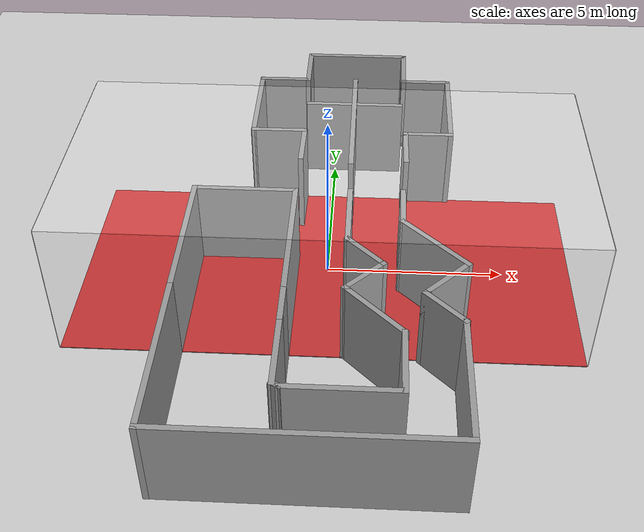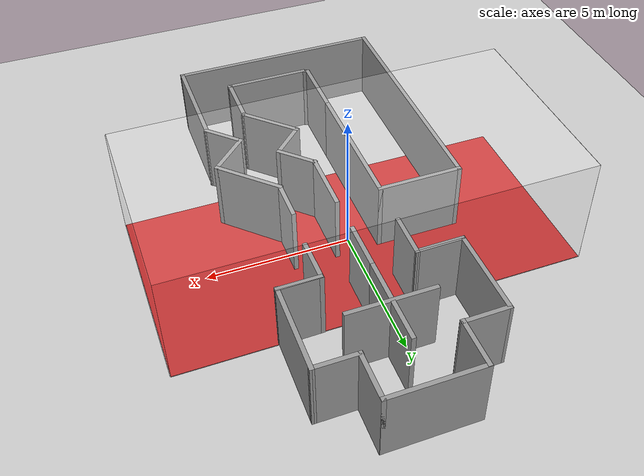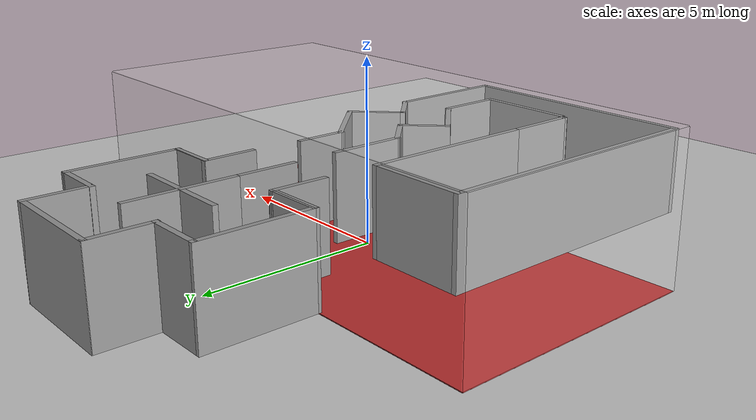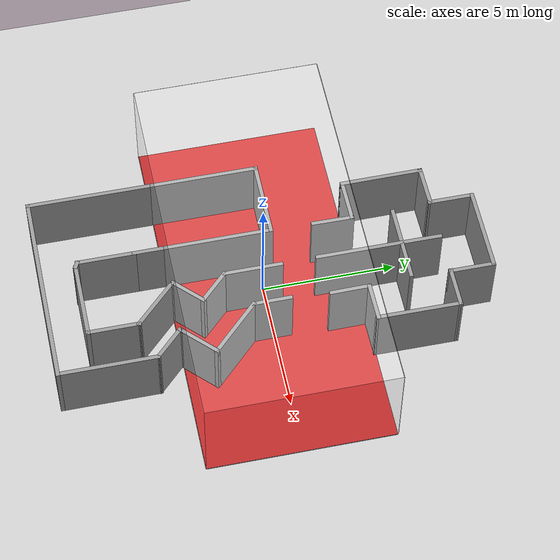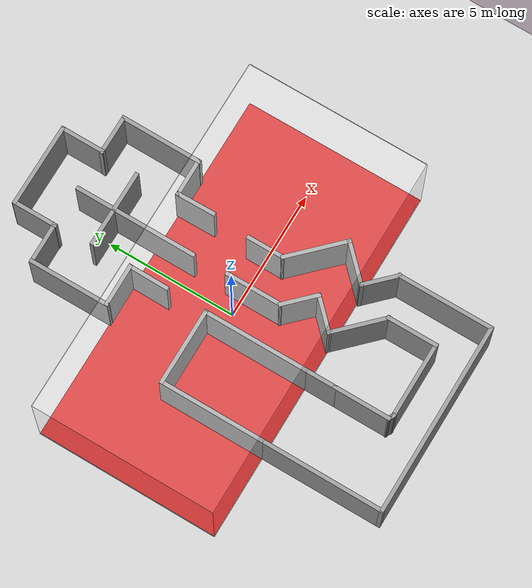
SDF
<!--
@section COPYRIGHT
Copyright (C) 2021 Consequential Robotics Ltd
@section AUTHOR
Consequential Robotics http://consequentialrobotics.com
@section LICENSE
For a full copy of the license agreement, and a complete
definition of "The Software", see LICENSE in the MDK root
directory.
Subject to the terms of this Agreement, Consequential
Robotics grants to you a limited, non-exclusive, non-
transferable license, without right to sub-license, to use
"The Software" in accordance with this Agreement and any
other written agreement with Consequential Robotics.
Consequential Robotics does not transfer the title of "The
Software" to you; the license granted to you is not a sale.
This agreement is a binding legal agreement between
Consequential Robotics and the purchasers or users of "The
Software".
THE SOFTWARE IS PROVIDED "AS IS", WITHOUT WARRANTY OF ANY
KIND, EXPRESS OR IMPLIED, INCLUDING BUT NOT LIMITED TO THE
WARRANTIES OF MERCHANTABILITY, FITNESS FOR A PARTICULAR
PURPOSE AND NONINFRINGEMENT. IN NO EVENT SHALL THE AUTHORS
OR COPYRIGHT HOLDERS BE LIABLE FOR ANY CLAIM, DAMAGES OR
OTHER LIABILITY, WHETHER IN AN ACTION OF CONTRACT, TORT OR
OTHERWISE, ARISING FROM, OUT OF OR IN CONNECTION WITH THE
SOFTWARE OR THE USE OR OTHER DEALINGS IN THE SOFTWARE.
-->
<?xml version="1.0"?>

<!-- hide-in-mirocode -->

<sdf version='1.5'>
	<world name='default'>

		<physics name='default_physics' default='0' type='ode'>
			<max_step_size>0.001</max_step_size>
			<real_time_factor>1</real_time_factor>
			<real_time_update_rate>1000</real_time_update_rate>
		</physics>

		<scene>
			<ambient>0.4 0.4 0.4 1</ambient>
			<background>0.7 0.7 0.7 1</background>
			<shadows>1</shadows>
		</scene>

		<light name='sun' type='directional'>
			<cast_shadows>1</cast_shadows>
			<pose frame=''>0 0 10 0 -0 0</pose>
			<diffuse>0.8 0.8 0.8 1</diffuse>
			<specular>0.1 0.1 0.1 1</specular>
			<attenuation>
				<range>1000</range>
				<constant>0.9</constant>
				<linear>0.01</linear>
				<quadratic>0.001</quadratic>
			</attenuation>
			<direction>-0.5 0.5 -1</direction>
		</light>

		<include>
			<uri>model://ground_plane</uri>
		</include>

		<include>
			<name>wall1</name>
			<uri>model://arena_walls</uri>
			<pose>0 0 0 0 0 0</pose>
		</include>
		<include>
			<name>inside_walls</name>
			<uri>model://navigation</uri>
			<pose>0 0 0 0 0 0</pose>
		</include>

		<gravity>0 0 -9.8</gravity>
		<magnetic_field>6e-06 2.3e-05 -4.2e-05</magnetic_field>
		<atmosphere type='adiabatic'/>

		<spherical_coordinates>
			<surface_model>EARTH_WGS84</surface_model>
			<latitude_deg>0</latitude_deg>
			<longitude_deg>0</longitude_deg>
			<elevation>0</elevation>
			<heading_deg>0</heading_deg>
		</spherical_coordinates>

		<gui fullscreen='0'>
			<camera name='user_camera'>
				<pose frame=''>1.40328 -0.966443 0.97483 0 0.45964 2.34021</pose>
				<view_controller>orbit</view_controller>
				<projection_type>perspective</projection_type>
			</camera>
		</gui>

	</world>
</sdf>
